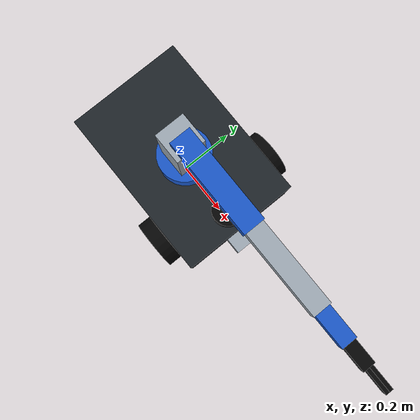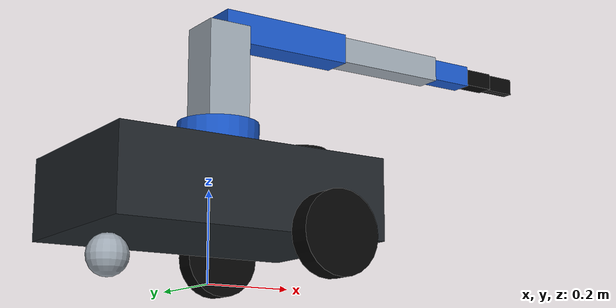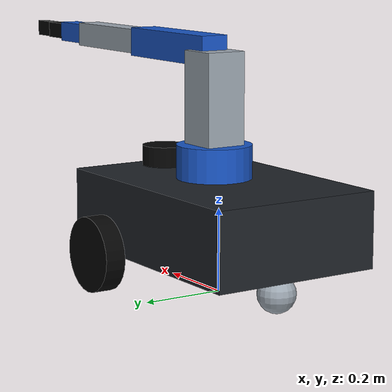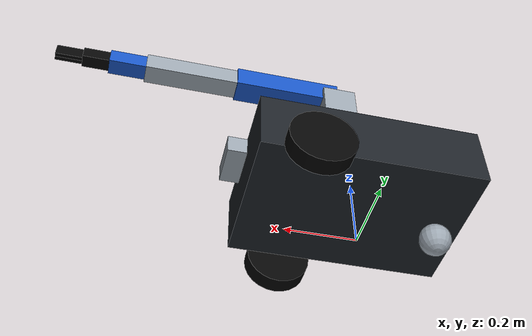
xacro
<?xml version="1.0"?>
<robot name="wheel_arm" xmlns:xacro="http://www.ros.org/wiki/xacro">
  <xacro:arg name="use_gazebo_control" default="true"/>
  <xacro:arg name="controllers_file" default="$(find wheel_arm_control)/config/controllers.yaml"/>
  <xacro:arg name="initial_shoulder_lift" default="0.0"/>
  <xacro:arg name="initial_elbow" default="0.0"/>
  <xacro:arg name="initial_wrist_pitch" default="0.0"/>
  <xacro:arg name="camera_mount" default="low"/>
  <xacro:property name="camera_mount" value="$(arg camera_mount)"/>
  <xacro:property name="raised_camera" value="${dict(low=False, mast=True)[camera_mount]}"/>

  <xacro:property name="base_length" value="0.62"/>
  <xacro:property name="base_width" value="0.42"/>
  <xacro:property name="base_height" value="0.18"/>
  <xacro:property name="wheel_radius" value="0.09"/>
  <xacro:property name="wheel_width" value="0.05"/>
  <xacro:property name="wheel_y" value="0.24"/>
  <xacro:property name="wheel_x" value="0.16"/>

  <material name="dark_gray">
    <color rgba="0.12 0.14 0.16 1.0"/>
  </material>
  <material name="light_gray">
    <color rgba="0.62 0.66 0.70 1.0"/>
  </material>
  <material name="blue">
    <color rgba="0.1 0.34 0.78 1.0"/>
  </material>
  <material name="black">
    <color rgba="0.02 0.02 0.02 1.0"/>
  </material>

  <xacro:macro name="box_inertial" params="mass x y z ox oy oz">
    <inertial>
      <origin xyz="${ox} ${oy} ${oz}" rpy="0 0 0"/>
      <mass value="${mass}"/>
      <inertia
        ixx="${mass * (y * y + z * z) / 12.0}" ixy="0" ixz="0"
        iyy="${mass * (x * x + z * z) / 12.0}" iyz="0"
        izz="${mass * (x * x + y * y) / 12.0}"/>
    </inertial>
  </xacro:macro>

  <xacro:macro name="cylinder_inertial" params="mass radius length ox oy oz">
    <inertial>
      <origin xyz="${ox} ${oy} ${oz}" rpy="0 0 0"/>
      <mass value="${mass}"/>
      <inertia
        ixx="${mass * (3.0 * radius * radius + length * length) / 12.0}" ixy="0" ixz="0"
        iyy="${mass * (3.0 * radius * radius + length * length) / 12.0}" iyz="0"
        izz="${mass * radius * radius / 2.0}"/>
    </inertial>
  </xacro:macro>

  <link name="base_footprint"/>

  <joint name="base_footprint_joint" type="fixed">
    <parent link="base_footprint"/>
    <child link="base_link"/>
    <origin xyz="0 0 ${wheel_radius}" rpy="0 0 0"/>
  </joint>

  <link name="base_link">
    <visual>
      <origin xyz="0 0 ${base_height / 2.0}" rpy="0 0 0"/>
      <geometry>
        <box size="${base_length} ${base_width} ${base_height}"/>
      </geometry>
      <material name="dark_gray"/>
    </visual>
    <collision>
      <origin xyz="0 0 ${base_height / 2.0}" rpy="0 0 0"/>
      <geometry>
        <box size="${base_length} ${base_width} ${base_height}"/>
      </geometry>
    </collision>
    <xacro:box_inertial mass="18.0" x="${base_length}" y="${base_width}" z="${base_height}" ox="0" oy="0" oz="${base_height / 2.0}"/>
  </link>

  <xacro:macro name="drive_wheel" params="side y">
    <link name="${side}_wheel_link">
      <visual>
        <origin xyz="0 0 0" rpy="${pi / 2.0} 0 0"/>
        <geometry>
          <cylinder radius="${wheel_radius}" length="${wheel_width}"/>
        </geometry>
        <material name="black"/>
      </visual>
      <collision>
        <origin xyz="0 0 0" rpy="${pi / 2.0} 0 0"/>
        <geometry>
          <cylinder radius="${wheel_radius}" length="${wheel_width}"/>
        </geometry>
      </collision>
      <xacro:cylinder_inertial mass="1.2" radius="${wheel_radius}" length="${wheel_width}" ox="0" oy="0" oz="0"/>
    </link>
    <joint name="${side}_wheel_joint" type="continuous">
      <parent link="base_link"/>
      <child link="${side}_wheel_link"/>
      <origin xyz="${wheel_x} ${y} 0" rpy="0 0 0"/>
      <axis xyz="0 1 0"/>
      <dynamics damping="0.1" friction="0.05"/>
    </joint>
  </xacro:macro>

  <xacro:drive_wheel side="left" y="${wheel_y}"/>
  <xacro:drive_wheel side="right" y="${-wheel_y}"/>

  <link name="rear_caster_link">
    <visual>
      <origin xyz="0 0 0" rpy="0 0 0"/>
      <geometry>
        <sphere radius="0.045"/>
      </geometry>
      <material name="light_gray"/>
    </visual>
    <collision>
      <origin xyz="0 0 0" rpy="0 0 0"/>
      <geometry>
        <sphere radius="0.045"/>
      </geometry>
    </collision>
    <inertial>
      <mass value="0.4"/>
      <inertia ixx="0.00032" ixy="0" ixz="0" iyy="0.00032" iyz="0" izz="0.00032"/>
    </inertial>
  </link>

  <joint name="rear_caster_joint" type="fixed">
    <parent link="base_link"/>
    <child link="rear_caster_link"/>
    <origin xyz="-0.23 0 -0.045" rpy="0 0 0"/>
  </joint>

  <link name="arm_mount_link">
    <visual>
      <origin xyz="0 0 0.04" rpy="0 0 0"/>
      <geometry>
        <cylinder radius="0.09" length="0.08"/>
      </geometry>
      <material name="blue"/>
    </visual>
    <collision>
      <origin xyz="0 0 0.04" rpy="0 0 0"/>
      <geometry>
        <cylinder radius="0.09" length="0.08"/>
      </geometry>
    </collision>
    <xacro:cylinder_inertial mass="1.5" radius="0.09" length="0.08" ox="0" oy="0" oz="0.04"/>
  </link>

  <joint name="arm_mount_joint" type="fixed">
    <parent link="base_link"/>
    <child link="arm_mount_link"/>
    <origin xyz="0.02 0 ${base_height}" rpy="0 0 0"/>
  </joint>

  <link name="shoulder_link">
    <visual>
      <origin xyz="0 0 0.11" rpy="0 0 0"/>
      <geometry>
        <box size="0.10 0.10 0.22"/>
      </geometry>
      <material name="light_gray"/>
    </visual>
    <collision>
      <origin xyz="0 0 0.11" rpy="0 0 0"/>
      <geometry>
        <box size="0.10 0.10 0.22"/>
      </geometry>
    </collision>
    <xacro:box_inertial mass="1.8" x="0.10" y="0.10" z="0.22" ox="0" oy="0" oz="0.11"/>
  </link>

  <joint name="shoulder_pan_joint" type="revolute">
    <parent link="arm_mount_link"/>
    <child link="shoulder_link"/>
    <origin xyz="0 0 0.08" rpy="0 0 0"/>
    <axis xyz="0 0 1"/>
    <limit lower="-3.14" upper="3.14" effort="40.0" velocity="1.5"/>
    <dynamics damping="2.0" friction="0.2"/>
  </joint>

  <link name="upper_arm_link">
    <visual>
      <origin xyz="0.16 0 0" rpy="0 0 0"/>
      <geometry>
        <box size="0.32 0.07 0.07"/>
      </geometry>
      <material name="blue"/>
    </visual>
    <collision>
      <origin xyz="0.16 0 0" rpy="0 0 0"/>
      <geometry>
        <box size="0.32 0.07 0.07"/>
      </geometry>
    </collision>
    <xacro:box_inertial mass="1.6" x="0.32" y="0.07" z="0.07" ox="0.16" oy="0" oz="0"/>
  </link>

  <joint name="shoulder_lift_joint" type="revolute">
    <parent link="shoulder_link"/>
    <child link="upper_arm_link"/>
    <origin xyz="0 0 0.22" rpy="0 0 0"/>
    <axis xyz="0 1 0"/>
    <limit lower="-1.57" upper="1.57" effort="35.0" velocity="1.5"/>
    <dynamics damping="4.0" friction="0.5"/>
  </joint>

  <link name="forearm_link">
    <visual>
      <origin xyz="0.14 0 0" rpy="0 0 0"/>
      <geometry>
        <box size="0.28 0.06 0.06"/>
      </geometry>
      <material name="light_gray"/>
    </visual>
    <collision>
      <origin xyz="0.14 0 0" rpy="0 0 0"/>
      <geometry>
        <box size="0.28 0.06 0.06"/>
      </geometry>
    </collision>
    <xacro:box_inertial mass="1.1" x="0.28" y="0.06" z="0.06" ox="0.14" oy="0" oz="0"/>
  </link>

  <joint name="elbow_joint" type="revolute">
    <parent link="upper_arm_link"/>
    <child link="forearm_link"/>
    <origin xyz="0.32 0 0" rpy="0 0 0"/>
    <axis xyz="0 1 0"/>
    <limit lower="-2.2" upper="2.2" effort="30.0" velocity="1.8"/>
    <dynamics damping="3.0" friction="0.4"/>
  </joint>

  <link name="wrist_link">
    <visual>
      <origin xyz="0.055 0 0" rpy="0 0 0"/>
      <geometry>
        <box size="0.11 0.05 0.05"/>
      </geometry>
      <material name="blue"/>
    </visual>
    <collision>
      <origin xyz="0.055 0 0" rpy="0 0 0"/>
      <geometry>
        <box size="0.11 0.05 0.05"/>
      </geometry>
    </collision>
    <xacro:box_inertial mass="0.5" x="0.11" y="0.05" z="0.05" ox="0.055" oy="0" oz="0"/>
  </link>

  <joint name="wrist_pitch_joint" type="revolute">
    <parent link="forearm_link"/>
    <child link="wrist_link"/>
    <origin xyz="0.28 0 0" rpy="0 0 0"/>
    <axis xyz="0 1 0"/>
    <limit lower="-2.6" upper="2.6" effort="15.0" velocity="2.0"/>
    <dynamics damping="2.0" friction="0.2"/>
  </joint>

  <link name="tool0">
    <visual>
      <origin xyz="0.04 0 0" rpy="0 0 0"/>
      <geometry>
        <box size="0.08 0.04 0.04"/>
      </geometry>
      <material name="black"/>
    </visual>
    <collision>
      <origin xyz="0.04 0 0" rpy="0 0 0"/>
      <geometry>
        <box size="0.08 0.04 0.04"/>
      </geometry>
    </collision>
    <xacro:box_inertial mass="0.2" x="0.08" y="0.04" z="0.04" ox="0.04" oy="0" oz="0"/>
  </link>

  <joint name="tool0_joint" type="fixed">
    <parent link="wrist_link"/>
    <child link="tool0"/>
    <origin xyz="0.11 0 0" rpy="0 0 0"/>
  </joint>

  <!-- Each prismatic joint moves outward; total inner opening is 2 * joint position. -->
  <xacro:macro name="gripper_finger" params="side sign">
    <link name="${side}_finger_link">
      <visual>
        <origin xyz="0.04 0 0"/>
        <geometry><box size="0.08 0.012 0.04"/></geometry>
        <material name="black"/>
      </visual>
      <collision>
        <origin xyz="0.04 0 0"/>
        <geometry><box size="0.08 0.012 0.04"/></geometry>
      </collision>
      <xacro:box_inertial mass="0.06" x="0.08" y="0.012" z="0.04" ox="0.04" oy="0" oz="0"/>
    </link>
    <joint name="${side}_finger_joint" type="prismatic">
      <parent link="tool0"/>
      <child link="${side}_finger_link"/>
      <origin xyz="0.08 ${sign * 0.006} 0"/>
      <axis xyz="0 ${sign} 0"/>
      <limit lower="0" upper="0.04" effort="10" velocity="0.04"/>
      <dynamics damping="2" friction="0.1"/>
    </joint>
    <gazebo reference="${side}_finger_link">
      <mu1>1.5</mu1>
      <mu2>1.5</mu2>
    </gazebo>
  </xacro:macro>
  <xacro:gripper_finger side="left" sign="${1}"/>
  <xacro:gripper_finger side="right" sign="${-1}"/>

  <link name="gripper_tcp"/>
  <joint name="gripper_tcp_joint" type="fixed">
    <parent link="tool0"/>
    <child link="gripper_tcp"/>
    <origin xyz="0.12 0 0"/>
  </joint>

  <link name="lidar_link">
    <visual>
      <origin xyz="0.06 0 0.025" rpy="0 0 0"/>
      <geometry>
        <cylinder radius="0.055" length="0.05"/>
      </geometry>
      <material name="black"/>
    </visual>
    <collision>
      <origin xyz="0 0 0.025" rpy="0 0 0"/>
      <geometry>
        <cylinder radius="0.055" length="0.05"/>
      </geometry>
    </collision>
    <xacro:cylinder_inertial mass="0.25" radius="0.055" length="0.05" ox="0" oy="0" oz="0.025"/>
  </link>

  <joint name="lidar_joint" type="fixed">
    <parent link="base_link"/>
    <child link="lidar_link"/>
    <origin xyz="0.18 0 ${base_height + 0.00}" rpy="0 0 0"/>
  </joint>

  <link name="imu_link">
    <visual>
      <origin xyz="0 0 0" rpy="0 0 0"/>
      <geometry>
        <box size="0.04 0.04 0.02"/>
      </geometry>
      <material name="blue"/>
    </visual>
    <collision>
      <origin xyz="0 0 0" rpy="0 0 0"/>
      <geometry>
        <box size="0.04 0.04 0.02"/>
      </geometry>
    </collision>
    <xacro:box_inertial mass="0.05" x="0.04" y="0.04" z="0.02" ox="0" oy="0" oz="0"/>
  </link>

  <joint name="imu_joint" type="fixed">
    <parent link="base_link"/>
    <child link="imu_link"/>
    <origin xyz="0 0 ${base_height + 0.03}" rpy="0 0 0"/>
  </joint>

  <xacro:if value="${raised_camera}">
    <link name="camera_mast_link">
      <visual>
        <origin xyz="0 0 0.315"/>
        <geometry><box size="0.025 0.025 0.63"/></geometry>
        <material name="dark_gray"/>
      </visual>
      <collision>
        <origin xyz="0 0 0.315"/>
        <geometry><box size="0.025 0.025 0.63"/></geometry>
      </collision>
      <xacro:box_inertial mass="0.35" x="0.025" y="0.025" z="0.63" ox="0" oy="0" oz="0.315"/>
    </link>
    <joint name="camera_mast_joint" type="fixed">
      <parent link="base_link"/>
      <child link="camera_mast_link"/>
      <origin xyz="-0.18 0.19 ${base_height}"/>
    </joint>
  </xacro:if>

  <link name="camera_link">
    <visual>
      <origin xyz="0 0 0" rpy="0 0 0"/>
      <geometry>
        <box size="0.055 0.12 0.055"/>
      </geometry>
      <material name="light_gray"/>
    </visual>
    <collision>
      <origin xyz="0 0 0" rpy="0 0 0"/>
      <geometry>
        <box size="0.055 0.12 0.055"/>
      </geometry>
    </collision>
    <xacro:box_inertial mass="0.25" x="0.055" y="0.12" z="0.055" ox="0" oy="0" oz="0"/>
  </link>

  <joint name="camera_joint" type="fixed">
    <parent link="${'camera_mast_link' if raised_camera else 'base_link'}"/>
    <child link="camera_link"/>
    <xacro:if value="${raised_camera}">
      <!-- Keep the optical center above the mast top, not on its face.
           Coincident geometry causes invalid RGB-D renders in Fortress/Ogre2. -->
      <origin xyz="0 0 0.6575" rpy="0 0.35 -0.22"/>
    </xacro:if>
    <xacro:unless value="${raised_camera}">
      <origin xyz="0.34 0 ${base_height - 0.04}" rpy="0 0 0"/>
    </xacro:unless>
  </joint>

  <!-- Optical coordinates: x right, y down, z forward. -->
  <link name="camera_optical_frame"/>
  <joint name="camera_optical_joint" type="fixed">
    <parent link="camera_link"/>
    <child link="camera_optical_frame"/>
    <origin xyz="0 0 0" rpy="${-pi/2} 0 ${-pi/2}"/>
  </joint>

  <gazebo reference="base_link">
    <material>Gazebo/DarkGrey</material>
  </gazebo>
  <gazebo reference="left_wheel_link">
    <material>Gazebo/Black</material>
    <mu1>1.5</mu1>
    <mu2>1.5</mu2>
    <kp>1000000.0</kp>
    <kd>100.0</kd>
  </gazebo>
  <gazebo reference="right_wheel_link">
    <material>Gazebo/Black</material>
    <mu1>1.5</mu1>
    <mu2>1.5</mu2>
    <kp>1000000.0</kp>
    <kd>100.0</kd>
  </gazebo>

  <gazebo reference="lidar_link">
    <sensor name="lidar" type="gpu_lidar">
      <pose>0 0 0.06 0 0 0</pose>
      <topic>/scan</topic>
      <update_rate>30</update_rate>
      <lidar>
        <scan>
          <horizontal>
            <samples>720</samples>
            <resolution>1</resolution>
            <min_angle>-3.14159</min_angle>
            <max_angle>3.14159</max_angle>
          </horizontal>
          <vertical>
            <samples>1</samples>
            <resolution>1</resolution>
            <min_angle>0</min_angle>
            <max_angle>0</max_angle>
          </vertical>
        </scan>
        <range>
          <min>0.18</min>
          <max>12.0</max>
          <resolution>0.01</resolution>
        </range>
      </lidar>
      <always_on>true</always_on>
      <visualize>true</visualize>
    </sensor>
  </gazebo>

  <gazebo reference="imu_link">
    <sensor name="imu" type="imu">
      <topic>/imu/raw</topic>
      <update_rate>100</update_rate>
      <always_on>true</always_on>
    </sensor>
  </gazebo>

  <gazebo reference="camera_link">
    <sensor name="rgbd_camera" type="rgbd_camera">
      <topic>/camera</topic>
      <update_rate>15</update_rate>
      <camera>
        <horizontal_fov>1.047</horizontal_fov>
        <image>
          <width>640</width>
          <height>480</height>
          <format>R8G8B8</format>
        </image>
        <clip>
          <near>0.1</near>
          <far>8.0</far>
        </clip>
      </camera>
      <always_on>true</always_on>
      <visualize>true</visualize>
    </sensor>
  </gazebo>

  <ros2_control name="GazeboSimSystem" type="system">
    <hardware>
      <plugin>gz_ros2_control/GazeboSimSystem</plugin>
    </hardware>
    <joint name="left_wheel_joint">
      <command_interface name="velocity"/>
      <state_interface name="position"/>
      <state_interface name="velocity"/>
    </joint>
    <joint name="right_wheel_joint">
      <command_interface name="velocity"/>
      <state_interface name="position"/>
      <state_interface name="velocity"/>
    </joint>
    <joint name="shoulder_pan_joint">
      <command_interface name="position"/>
      <state_interface name="position">
        <param name="initial_value">0.0</param>
      </state_interface>
      <state_interface name="velocity"/>
    </joint>
    <joint name="shoulder_lift_joint">
      <command_interface name="position"/>
      <state_interface name="position">
        <param name="initial_value">$(arg initial_shoulder_lift)</param>
      </state_interface>
      <state_interface name="velocity"/>
    </joint>
    <joint name="elbow_joint">
      <command_interface name="position"/>
      <state_interface name="position">
        <param name="initial_value">$(arg initial_elbow)</param>
      </state_interface>
      <state_interface name="velocity"/>
    </joint>
    <joint name="wrist_pitch_joint">
      <command_interface name="position"/>
      <state_interface name="position">
        <param name="initial_value">$(arg initial_wrist_pitch)</param>
      </state_interface>
      <state_interface name="velocity"/>
    </joint>
    <xacro:macro name="gripper_control_joint" params="side">
      <joint name="${side}_finger_joint">
        <command_interface name="position">
          <param name="min">0.0</param>
          <param name="max">0.04</param>
        </command_interface>
        <state_interface name="position"><param name="initial_value">0.03</param></state_interface>
        <state_interface name="velocity"/>
      </joint>
    </xacro:macro>
    <xacro:gripper_control_joint side="left"/>
    <xacro:gripper_control_joint side="right"/>
  </ros2_control>

  <xacro:if value="$(arg use_gazebo_control)">
    <gazebo>
      <plugin filename="libign_ros2_control-system.so" name="gz_ros2_control::GazeboSimROS2ControlPlugin">
        <parameters>$(arg controllers_file)</parameters>
        <controller_manager_name>controller_manager</controller_manager_name>
        <robot_param_node>robot_state_publisher</robot_param_node>
        <robot_param>robot_description</robot_param>
        <hold_joints>true</hold_joints>
        <position_proportional_gain>1.0</position_proportional_gain>
        <ros>
          <namespace>wheel_arm</namespace>
        </ros>
      </plugin>
    </gazebo>
  </xacro:if>
</robot>
